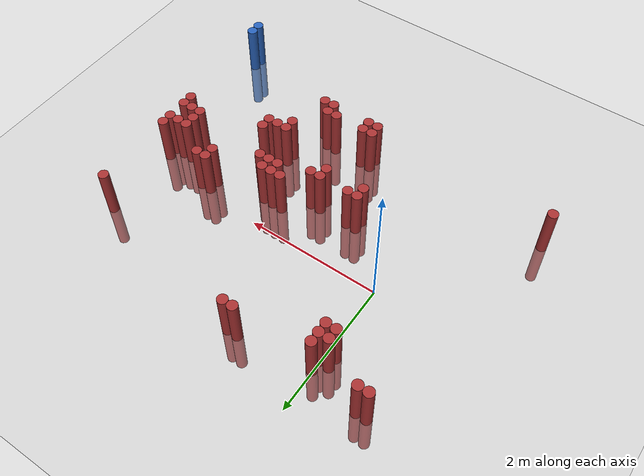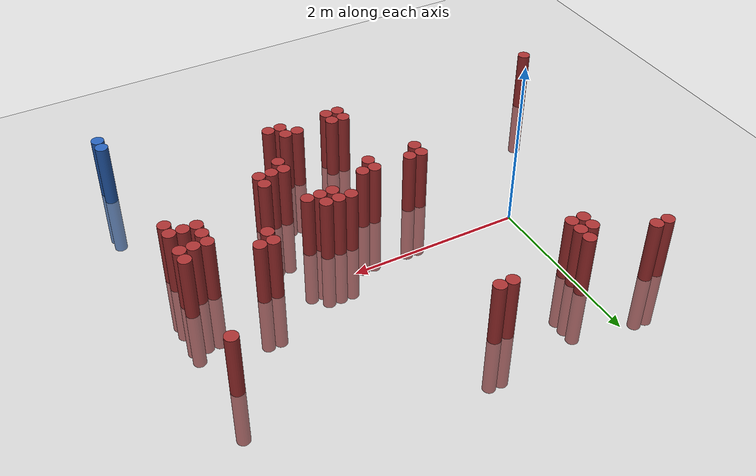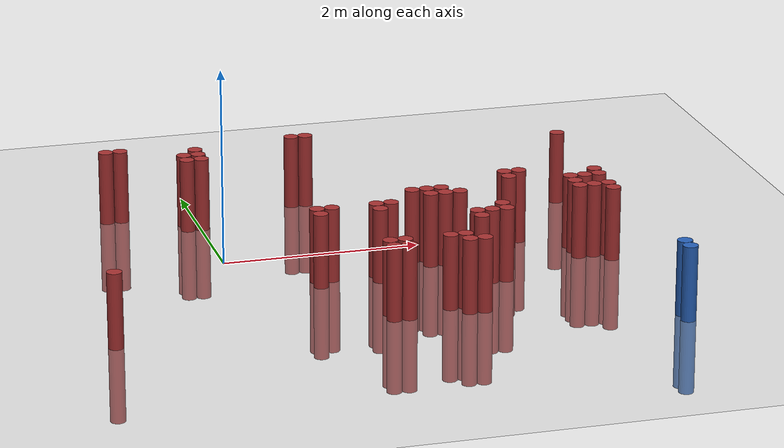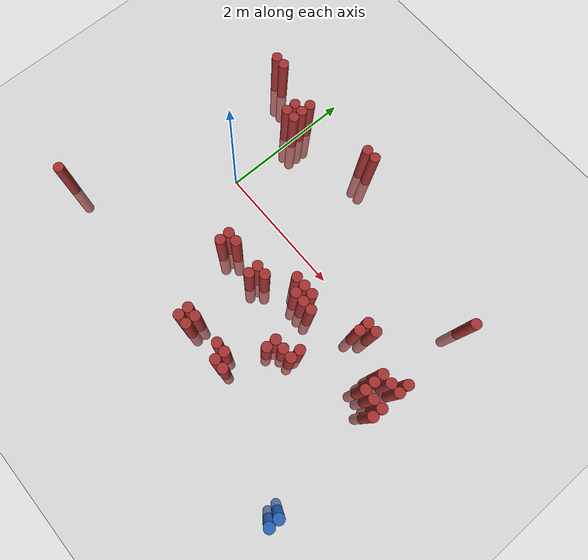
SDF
<sdf version="1.6">
 <world name="default">
  <model name="ground_plane">
   <static>1</static>
   <link name="link">
    <collision name="collision">
     <geometry><plane><normal>0 0 1</normal><size>100 100</size></plane></geometry>
     <surface><friction><ode><mu>100</mu><mu2>50</mu2></ode></friction></surface>
    </collision>
    <visual name="visual">
     <cast_shadows>0</cast_shadows>
     <geometry><plane><normal>0 0 1</normal><size>100 100</size></plane></geometry>
     <material>
      <script><uri>file://media/materials/scripts/gazebo.material</uri><name>Gazebo/Grey</name></script>
     </material>
    </visual>
   </link>
  </model>
  <model name="unit_cylinder_78">
   <static>1</static>
   <pose>3.925000 -2.675000 0.000000 0.000000 0.000000 0.000000</pose>
   <link name="link">
    <inertial>
     <mass>1</mass>
     <inertia><ixx>0.145833</ixx><ixy>0</ixy><ixz>0</ixz><iyy>0.145833</iyy><iyz>0</iyz><izz>0.125</izz></inertia>
    </inertial>
    <collision name="collision">
     <geometry><cylinder><radius>0.075000</radius><length>1.5</length></cylinder></geometry>
    </collision>
    <visual name="visual">
     <geometry><cylinder><radius>0.075000</radius><length>1.5</length></cylinder></geometry>
     <material>
      <ambient>0.152000 0.379000 0.720000 1</ambient>
      <diffuse>0.152000 0.379000 0.720000 1</diffuse>
     </material>
     <material>
      <script><name>Gazebo/Grey</name><uri>file://media/materials/scripts/gazebo.material</uri></script>
     </material>
    </visual>
   </link>
  </model>
  <model name="unit_cylinder_80">
   <static>1</static>
   <pose>3.925000 -2.525000 0.000000 0.000000 0.000000 0.000000</pose>
   <link name="link">
    <inertial>
     <mass>1</mass>
     <inertia><ixx>0.145833</ixx><ixy>0</ixy><ixz>0</ixz><iyy>0.145833</iyy><iyz>0</iyz><izz>0.125</izz></inertia>
    </inertial>
    <collision name="collision">
     <geometry><cylinder><radius>0.075000</radius><length>1.5</length></cylinder></geometry>
    </collision>
    <visual name="visual">
     <geometry><cylinder><radius>0.075000</radius><length>1.5</length></cylinder></geometry>
     <material>
      <ambient>0.152000 0.379000 0.720000 1</ambient>
      <diffuse>0.152000 0.379000 0.720000 1</diffuse>
     </material>
     <material>
      <script><name>Gazebo/Grey</name><uri>file://media/materials/scripts/gazebo.material</uri></script>
     </material>
    </visual>
   </link>
  </model>
  <model name="unit_cylinder_303">
   <static>1</static>
   <pose>-1.475000 -1.925000 0.000000 0.000000 0.000000 0.000000</pose>
   <link name="link">
    <inertial>
     <mass>1</mass>
     <inertia><ixx>0.145833</ixx><ixy>0</ixy><ixz>0</ixz><iyy>0.145833</iyy><iyz>0</iyz><izz>0.125</izz></inertia>
    </inertial>
    <collision name="collision">
     <geometry><cylinder><radius>0.075000</radius><length>1.5</length></cylinder></geometry>
    </collision>
    <visual name="visual">
     <geometry><cylinder><radius>0.075000</radius><length>1.5</length></cylinder></geometry>
     <material>
      <ambient>0.648000 0.192000 0.192000 1</ambient>
      <diffuse>0.648000 0.192000 0.192000 1</diffuse>
     </material>
     <material>
      <script><name>Gazebo/Grey</name><uri>file://media/materials/scripts/gazebo.material</uri></script>
     </material>
    </visual>
   </link>
  </model>
  <model name="unit_cylinder_318">
   <static>1</static>
   <pose>-0.875000 1.525000 0.000000 0.000000 0.000000 0.000000</pose>
   <link name="link">
    <inertial>
     <mass>1</mass>
     <inertia><ixx>0.145833</ixx><ixy>0</ixy><ixz>0</ixz><iyy>0.145833</iyy><iyz>0</iyz><izz>0.125</izz></inertia>
    </inertial>
    <collision name="collision">
     <geometry><cylinder><radius>0.075000</radius><length>1.5</length></cylinder></geometry>
    </collision>
    <visual name="visual">
     <geometry><cylinder><radius>0.075000</radius><length>1.5</length></cylinder></geometry>
     <material>
      <ambient>0.648000 0.192000 0.192000 1</ambient>
      <diffuse>0.648000 0.192000 0.192000 1</diffuse>
     </material>
     <material>
      <script><name>Gazebo/Grey</name><uri>file://media/materials/scripts/gazebo.material</uri></script>
     </material>
    </visual>
   </link>
  </model>
  <model name="unit_cylinder_321">
   <static>1</static>
   <pose>-0.725000 1.525000 0.000000 0.000000 0.000000 0.000000</pose>
   <link name="link">
    <inertial>
     <mass>1</mass>
     <inertia><ixx>0.145833</ixx><ixy>0</ixy><ixz>0</ixz><iyy>0.145833</iyy><iyz>0</iyz><izz>0.125</izz></inertia>
    </inertial>
    <collision name="collision">
     <geometry><cylinder><radius>0.075000</radius><length>1.5</length></cylinder></geometry>
    </collision>
    <visual name="visual">
     <geometry><cylinder><radius>0.075000</radius><length>1.5</length></cylinder></geometry>
     <material>
      <ambient>0.648000 0.192000 0.192000 1</ambient>
      <diffuse>0.648000 0.192000 0.192000 1</diffuse>
     </material>
     <material>
      <script><name>Gazebo/Grey</name><uri>file://media/materials/scripts/gazebo.material</uri></script>
     </material>
    </visual>
   </link>
  </model>
  <model name="unit_cylinder_324">
   <static>1</static>
   <pose>-0.125000 1.075000 0.000000 0.000000 0.000000 0.000000</pose>
   <link name="link">
    <inertial>
     <mass>1</mass>
     <inertia><ixx>0.145833</ixx><ixy>0</ixy><ixz>0</ixz><iyy>0.145833</iyy><iyz>0</iyz><izz>0.125</izz></inertia>
    </inertial>
    <collision name="collision">
     <geometry><cylinder><radius>0.075000</radius><length>1.5</length></cylinder></geometry>
    </collision>
    <visual name="visual">
     <geometry><cylinder><radius>0.075000</radius><length>1.5</length></cylinder></geometry>
     <material>
      <ambient>0.648000 0.192000 0.192000 1</ambient>
      <diffuse>0.648000 0.192000 0.192000 1</diffuse>
     </material>
     <material>
      <script><name>Gazebo/Grey</name><uri>file://media/materials/scripts/gazebo.material</uri></script>
     </material>
    </visual>
   </link>
  </model>
  <model name="unit_cylinder_325">
   <static>1</static>
   <pose>-0.125000 1.225000 0.000000 0.000000 0.000000 0.000000</pose>
   <link name="link">
    <inertial>
     <mass>1</mass>
     <inertia><ixx>0.145833</ixx><ixy>0</ixy><ixz>0</ixz><iyy>0.145833</iyy><iyz>0</iyz><izz>0.125</izz></inertia>
    </inertial>
    <collision name="collision">
     <geometry><cylinder><radius>0.075000</radius><length>1.5</length></cylinder></geometry>
    </collision>
    <visual name="visual">
     <geometry><cylinder><radius>0.075000</radius><length>1.5</length></cylinder></geometry>
     <material>
      <ambient>0.648000 0.192000 0.192000 1</ambient>
      <diffuse>0.648000 0.192000 0.192000 1</diffuse>
     </material>
     <material>
      <script><name>Gazebo/Grey</name><uri>file://media/materials/scripts/gazebo.material</uri></script>
     </material>
    </visual>
   </link>
  </model>
  <model name="unit_cylinder_337">
   <static>1</static>
   <pose>0.025000 1.075000 0.000000 0.000000 0.000000 0.000000</pose>
   <link name="link">
    <inertial>
     <mass>1</mass>
     <inertia><ixx>0.145833</ixx><ixy>0</ixy><ixz>0</ixz><iyy>0.145833</iyy><iyz>0</iyz><izz>0.125</izz></inertia>
    </inertial>
    <collision name="collision">
     <geometry><cylinder><radius>0.075000</radius><length>1.5</length></cylinder></geometry>
    </collision>
    <visual name="visual">
     <geometry><cylinder><radius>0.075000</radius><length>1.5</length></cylinder></geometry>
     <material>
      <ambient>0.648000 0.192000 0.192000 1</ambient>
      <diffuse>0.648000 0.192000 0.192000 1</diffuse>
     </material>
     <material>
      <script><name>Gazebo/Grey</name><uri>file://media/materials/scripts/gazebo.material</uri></script>
     </material>
    </visual>
   </link>
  </model>
  <model name="unit_cylinder_338">
   <static>1</static>
   <pose>0.025000 1.225000 0.000000 0.000000 0.000000 0.000000</pose>
   <link name="link">
    <inertial>
     <mass>1</mass>
     <inertia><ixx>0.145833</ixx><ixy>0</ixy><ixz>0</ixz><iyy>0.145833</iyy><iyz>0</iyz><izz>0.125</izz></inertia>
    </inertial>
    <collision name="collision">
     <geometry><cylinder><radius>0.075000</radius><length>1.5</length></cylinder></geometry>
    </collision>
    <visual name="visual">
     <geometry><cylinder><radius>0.075000</radius><length>1.5</length></cylinder></geometry>
     <material>
      <ambient>0.648000 0.192000 0.192000 1</ambient>
      <diffuse>0.648000 0.192000 0.192000 1</diffuse>
     </material>
     <material>
      <script><name>Gazebo/Grey</name><uri>file://media/materials/scripts/gazebo.material</uri></script>
     </material>
    </visual>
   </link>
  </model>
  <model name="unit_cylinder_339">
   <static>1</static>
   <pose>0.025000 1.375000 0.000000 0.000000 0.000000 0.000000</pose>
   <link name="link">
    <inertial>
     <mass>1</mass>
     <inertia><ixx>0.145833</ixx><ixy>0</ixy><ixz>0</ixz><iyy>0.145833</iyy><iyz>0</iyz><izz>0.125</izz></inertia>
    </inertial>
    <collision name="collision">
     <geometry><cylinder><radius>0.075000</radius><length>1.5</length></cylinder></geometry>
    </collision>
    <visual name="visual">
     <geometry><cylinder><radius>0.075000</radius><length>1.5</length></cylinder></geometry>
     <material>
      <ambient>0.648000 0.192000 0.192000 1</ambient>
      <diffuse>0.648000 0.192000 0.192000 1</diffuse>
     </material>
     <material>
      <script><name>Gazebo/Grey</name><uri>file://media/materials/scripts/gazebo.material</uri></script>
     </material>
    </visual>
   </link>
  </model>
  <model name="unit_cylinder_355">
   <static>1</static>
   <pose>0.775000 -0.875000 0.000000 0.000000 0.000000 0.000000</pose>
   <link name="link">
    <inertial>
     <mass>1</mass>
     <inertia><ixx>0.145833</ixx><ixy>0</ixy><ixz>0</ixz><iyy>0.145833</iyy><iyz>0</iyz><izz>0.125</izz></inertia>
    </inertial>
    <collision name="collision">
     <geometry><cylinder><radius>0.075000</radius><length>1.5</length></cylinder></geometry>
    </collision>
    <visual name="visual">
     <geometry><cylinder><radius>0.075000</radius><length>1.5</length></cylinder></geometry>
     <material>
      <ambient>0.648000 0.192000 0.192000 1</ambient>
      <diffuse>0.648000 0.192000 0.192000 1</diffuse>
     </material>
     <material>
      <script><name>Gazebo/Grey</name><uri>file://media/materials/scripts/gazebo.material</uri></script>
     </material>
    </visual>
   </link>
  </model>
  <model name="unit_cylinder_356">
   <static>1</static>
   <pose>0.775000 -0.725000 0.000000 0.000000 0.000000 0.000000</pose>
   <link name="link">
    <inertial>
     <mass>1</mass>
     <inertia><ixx>0.145833</ixx><ixy>0</ixy><ixz>0</ixz><iyy>0.145833</iyy><iyz>0</iyz><izz>0.125</izz></inertia>
    </inertial>
    <collision name="collision">
     <geometry><cylinder><radius>0.075000</radius><length>1.5</length></cylinder></geometry>
    </collision>
    <visual name="visual">
     <geometry><cylinder><radius>0.075000</radius><length>1.5</length></cylinder></geometry>
     <material>
      <ambient>0.648000 0.192000 0.192000 1</ambient>
      <diffuse>0.648000 0.192000 0.192000 1</diffuse>
     </material>
     <material>
      <script><name>Gazebo/Grey</name><uri>file://media/materials/scripts/gazebo.material</uri></script>
     </material>
    </visual>
   </link>
  </model>
  <model name="unit_cylinder_357">
   <static>1</static>
   <pose>0.925000 -0.725000 0.000000 0.000000 0.000000 0.000000</pose>
   <link name="link">
    <inertial>
     <mass>1</mass>
     <inertia><ixx>0.145833</ixx><ixy>0</ixy><ixz>0</ixz><iyy>0.145833</iyy><iyz>0</iyz><izz>0.125</izz></inertia>
    </inertial>
    <collision name="collision">
     <geometry><cylinder><radius>0.075000</radius><length>1.5</length></cylinder></geometry>
    </collision>
    <visual name="visual">
     <geometry><cylinder><radius>0.075000</radius><length>1.5</length></cylinder></geometry>
     <material>
      <ambient>0.648000 0.192000 0.192000 1</ambient>
      <diffuse>0.648000 0.192000 0.192000 1</diffuse>
     </material>
     <material>
      <script><name>Gazebo/Grey</name><uri>file://media/materials/scripts/gazebo.material</uri></script>
     </material>
    </visual>
   </link>
  </model>
  <model name="unit_cylinder_358">
   <static>1</static>
   <pose>1.075000 1.525000 0.000000 0.000000 0.000000 0.000000</pose>
   <link name="link">
    <inertial>
     <mass>1</mass>
     <inertia><ixx>0.145833</ixx><ixy>0</ixy><ixz>0</ixz><iyy>0.145833</iyy><iyz>0</iyz><izz>0.125</izz></inertia>
    </inertial>
    <collision name="collision">
     <geometry><cylinder><radius>0.075000</radius><length>1.5</length></cylinder></geometry>
    </collision>
    <visual name="visual">
     <geometry><cylinder><radius>0.075000</radius><length>1.5</length></cylinder></geometry>
     <material>
      <ambient>0.648000 0.192000 0.192000 1</ambient>
      <diffuse>0.648000 0.192000 0.192000 1</diffuse>
     </material>
     <material>
      <script><name>Gazebo/Grey</name><uri>file://media/materials/scripts/gazebo.material</uri></script>
     </material>
    </visual>
   </link>
  </model>
  <model name="unit_cylinder_359">
   <static>1</static>
   <pose>1.225000 -1.925000 0.000000 0.000000 0.000000 0.000000</pose>
   <link name="link">
    <inertial>
     <mass>1</mass>
     <inertia><ixx>0.145833</ixx><ixy>0</ixy><ixz>0</ixz><iyy>0.145833</iyy><iyz>0</iyz><izz>0.125</izz></inertia>
    </inertial>
    <collision name="collision">
     <geometry><cylinder><radius>0.075000</radius><length>1.5</length></cylinder></geometry>
    </collision>
    <visual name="visual">
     <geometry><cylinder><radius>0.075000</radius><length>1.5</length></cylinder></geometry>
     <material>
      <ambient>0.648000 0.192000 0.192000 1</ambient>
      <diffuse>0.648000 0.192000 0.192000 1</diffuse>
     </material>
     <material>
      <script><name>Gazebo/Grey</name><uri>file://media/materials/scripts/gazebo.material</uri></script>
     </material>
    </visual>
   </link>
  </model>
  <model name="unit_cylinder_360">
   <static>1</static>
   <pose>1.225000 -1.775000 0.000000 0.000000 0.000000 0.000000</pose>
   <link name="link">
    <inertial>
     <mass>1</mass>
     <inertia><ixx>0.145833</ixx><ixy>0</ixy><ixz>0</ixz><iyy>0.145833</iyy><iyz>0</iyz><izz>0.125</izz></inertia>
    </inertial>
    <collision name="collision">
     <geometry><cylinder><radius>0.075000</radius><length>1.5</length></cylinder></geometry>
    </collision>
    <visual name="visual">
     <geometry><cylinder><radius>0.075000</radius><length>1.5</length></cylinder></geometry>
     <material>
      <ambient>0.648000 0.192000 0.192000 1</ambient>
      <diffuse>0.648000 0.192000 0.192000 1</diffuse>
     </material>
     <material>
      <script><name>Gazebo/Grey</name><uri>file://media/materials/scripts/gazebo.material</uri></script>
     </material>
    </visual>
   </link>
  </model>
  <model name="unit_cylinder_361">
   <static>1</static>
   <pose>1.225000 1.525000 0.000000 0.000000 0.000000 0.000000</pose>
   <link name="link">
    <inertial>
     <mass>1</mass>
     <inertia><ixx>0.145833</ixx><ixy>0</ixy><ixz>0</ixz><iyy>0.145833</iyy><iyz>0</iyz><izz>0.125</izz></inertia>
    </inertial>
    <collision name="collision">
     <geometry><cylinder><radius>0.075000</radius><length>1.5</length></cylinder></geometry>
    </collision>
    <visual name="visual">
     <geometry><cylinder><radius>0.075000</radius><length>1.5</length></cylinder></geometry>
     <material>
      <ambient>0.648000 0.192000 0.192000 1</ambient>
      <diffuse>0.648000 0.192000 0.192000 1</diffuse>
     </material>
     <material>
      <script><name>Gazebo/Grey</name><uri>file://media/materials/scripts/gazebo.material</uri></script>
     </material>
    </visual>
   </link>
  </model>
  <model name="unit_cylinder_366">
   <static>1</static>
   <pose>1.375000 -1.925000 0.000000 0.000000 0.000000 0.000000</pose>
   <link name="link">
    <inertial>
     <mass>1</mass>
     <inertia><ixx>0.145833</ixx><ixy>0</ixy><ixz>0</ixz><iyy>0.145833</iyy><iyz>0</iyz><izz>0.125</izz></inertia>
    </inertial>
    <collision name="collision">
     <geometry><cylinder><radius>0.075000</radius><length>1.5</length></cylinder></geometry>
    </collision>
    <visual name="visual">
     <geometry><cylinder><radius>0.075000</radius><length>1.5</length></cylinder></geometry>
     <material>
      <ambient>0.648000 0.192000 0.192000 1</ambient>
      <diffuse>0.648000 0.192000 0.192000 1</diffuse>
     </material>
     <material>
      <script><name>Gazebo/Grey</name><uri>file://media/materials/scripts/gazebo.material</uri></script>
     </material>
    </visual>
   </link>
  </model>
  <model name="unit_cylinder_367">
   <static>1</static>
   <pose>1.375000 -1.775000 0.000000 0.000000 0.000000 0.000000</pose>
   <link name="link">
    <inertial>
     <mass>1</mass>
     <inertia><ixx>0.145833</ixx><ixy>0</ixy><ixz>0</ixz><iyy>0.145833</iyy><iyz>0</iyz><izz>0.125</izz></inertia>
    </inertial>
    <collision name="collision">
     <geometry><cylinder><radius>0.075000</radius><length>1.5</length></cylinder></geometry>
    </collision>
    <visual name="visual">
     <geometry><cylinder><radius>0.075000</radius><length>1.5</length></cylinder></geometry>
     <material>
      <ambient>0.648000 0.192000 0.192000 1</ambient>
      <diffuse>0.648000 0.192000 0.192000 1</diffuse>
     </material>
     <material>
      <script><name>Gazebo/Grey</name><uri>file://media/materials/scripts/gazebo.material</uri></script>
     </material>
    </visual>
   </link>
  </model>
  <model name="unit_cylinder_368">
   <static>1</static>
   <pose>1.375000 -0.875000 0.000000 0.000000 0.000000 0.000000</pose>
   <link name="link">
    <inertial>
     <mass>1</mass>
     <inertia><ixx>0.145833</ixx><ixy>0</ixy><ixz>0</ixz><iyy>0.145833</iyy><iyz>0</iyz><izz>0.125</izz></inertia>
    </inertial>
    <collision name="collision">
     <geometry><cylinder><radius>0.075000</radius><length>1.5</length></cylinder></geometry>
    </collision>
    <visual name="visual">
     <geometry><cylinder><radius>0.075000</radius><length>1.5</length></cylinder></geometry>
     <material>
      <ambient>0.648000 0.192000 0.192000 1</ambient>
      <diffuse>0.648000 0.192000 0.192000 1</diffuse>
     </material>
     <material>
      <script><name>Gazebo/Grey</name><uri>file://media/materials/scripts/gazebo.material</uri></script>
     </material>
    </visual>
   </link>
  </model>
  <model name="unit_cylinder_369">
   <static>1</static>
   <pose>1.375000 -0.725000 0.000000 0.000000 0.000000 0.000000</pose>
   <link name="link">
    <inertial>
     <mass>1</mass>
     <inertia><ixx>0.145833</ixx><ixy>0</ixy><ixz>0</ixz><iyy>0.145833</iyy><iyz>0</iyz><izz>0.125</izz></inertia>
    </inertial>
    <collision name="collision">
     <geometry><cylinder><radius>0.075000</radius><length>1.5</length></cylinder></geometry>
    </collision>
    <visual name="visual">
     <geometry><cylinder><radius>0.075000</radius><length>1.5</length></cylinder></geometry>
     <material>
      <ambient>0.648000 0.192000 0.192000 1</ambient>
      <diffuse>0.648000 0.192000 0.192000 1</diffuse>
     </material>
     <material>
      <script><name>Gazebo/Grey</name><uri>file://media/materials/scripts/gazebo.material</uri></script>
     </material>
    </visual>
   </link>
  </model>
  <model name="unit_cylinder_375">
   <static>1</static>
   <pose>1.525000 -0.725000 0.000000 0.000000 0.000000 0.000000</pose>
   <link name="link">
    <inertial>
     <mass>1</mass>
     <inertia><ixx>0.145833</ixx><ixy>0</ixy><ixz>0</ixz><iyy>0.145833</iyy><iyz>0</iyz><izz>0.125</izz></inertia>
    </inertial>
    <collision name="collision">
     <geometry><cylinder><radius>0.075000</radius><length>1.5</length></cylinder></geometry>
    </collision>
    <visual name="visual">
     <geometry><cylinder><radius>0.075000</radius><length>1.5</length></cylinder></geometry>
     <material>
      <ambient>0.648000 0.192000 0.192000 1</ambient>
      <diffuse>0.648000 0.192000 0.192000 1</diffuse>
     </material>
     <material>
      <script><name>Gazebo/Grey</name><uri>file://media/materials/scripts/gazebo.material</uri></script>
     </material>
    </visual>
   </link>
  </model>
  <model name="unit_cylinder_381">
   <static>1</static>
   <pose>1.825000 -1.775000 0.000000 0.000000 0.000000 0.000000</pose>
   <link name="link">
    <inertial>
     <mass>1</mass>
     <inertia><ixx>0.145833</ixx><ixy>0</ixy><ixz>0</ixz><iyy>0.145833</iyy><iyz>0</iyz><izz>0.125</izz></inertia>
    </inertial>
    <collision name="collision">
     <geometry><cylinder><radius>0.075000</radius><length>1.5</length></cylinder></geometry>
    </collision>
    <visual name="visual">
     <geometry><cylinder><radius>0.075000</radius><length>1.5</length></cylinder></geometry>
     <material>
      <ambient>0.648000 0.192000 0.192000 1</ambient>
      <diffuse>0.648000 0.192000 0.192000 1</diffuse>
     </material>
     <material>
      <script><name>Gazebo/Grey</name><uri>file://media/materials/scripts/gazebo.material</uri></script>
     </material>
    </visual>
   </link>
  </model>
  <model name="unit_cylinder_382">
   <static>1</static>
   <pose>1.825000 -0.425000 0.000000 0.000000 0.000000 0.000000</pose>
   <link name="link">
    <inertial>
     <mass>1</mass>
     <inertia><ixx>0.145833</ixx><ixy>0</ixy><ixz>0</ixz><iyy>0.145833</iyy><iyz>0</iyz><izz>0.125</izz></inertia>
    </inertial>
    <collision name="collision">
     <geometry><cylinder><radius>0.075000</radius><length>1.5</length></cylinder></geometry>
    </collision>
    <visual name="visual">
     <geometry><cylinder><radius>0.075000</radius><length>1.5</length></cylinder></geometry>
     <material>
      <ambient>0.648000 0.192000 0.192000 1</ambient>
      <diffuse>0.648000 0.192000 0.192000 1</diffuse>
     </material>
     <material>
      <script><name>Gazebo/Grey</name><uri>file://media/materials/scripts/gazebo.material</uri></script>
     </material>
    </visual>
   </link>
  </model>
  <model name="unit_cylinder_387">
   <static>1</static>
   <pose>1.975000 -1.925000 0.000000 0.000000 0.000000 0.000000</pose>
   <link name="link">
    <inertial>
     <mass>1</mass>
     <inertia><ixx>0.145833</ixx><ixy>0</ixy><ixz>0</ixz><iyy>0.145833</iyy><iyz>0</iyz><izz>0.125</izz></inertia>
    </inertial>
    <collision name="collision">
     <geometry><cylinder><radius>0.075000</radius><length>1.5</length></cylinder></geometry>
    </collision>
    <visual name="visual">
     <geometry><cylinder><radius>0.075000</radius><length>1.5</length></cylinder></geometry>
     <material>
      <ambient>0.648000 0.192000 0.192000 1</ambient>
      <diffuse>0.648000 0.192000 0.192000 1</diffuse>
     </material>
     <material>
      <script><name>Gazebo/Grey</name><uri>file://media/materials/scripts/gazebo.material</uri></script>
     </material>
    </visual>
   </link>
  </model>
  <model name="unit_cylinder_388">
   <static>1</static>
   <pose>1.975000 -1.775000 0.000000 0.000000 0.000000 0.000000</pose>
   <link name="link">
    <inertial>
     <mass>1</mass>
     <inertia><ixx>0.145833</ixx><ixy>0</ixy><ixz>0</ixz><iyy>0.145833</iyy><iyz>0</iyz><izz>0.125</izz></inertia>
    </inertial>
    <collision name="collision">
     <geometry><cylinder><radius>0.075000</radius><length>1.5</length></cylinder></geometry>
    </collision>
    <visual name="visual">
     <geometry><cylinder><radius>0.075000</radius><length>1.5</length></cylinder></geometry>
     <material>
      <ambient>0.648000 0.192000 0.192000 1</ambient>
      <diffuse>0.648000 0.192000 0.192000 1</diffuse>
     </material>
     <material>
      <script><name>Gazebo/Grey</name><uri>file://media/materials/scripts/gazebo.material</uri></script>
     </material>
    </visual>
   </link>
  </model>
  <model name="unit_cylinder_389">
   <static>1</static>
   <pose>1.975000 -0.575000 0.000000 0.000000 0.000000 0.000000</pose>
   <link name="link">
    <inertial>
     <mass>1</mass>
     <inertia><ixx>0.145833</ixx><ixy>0</ixy><ixz>0</ixz><iyy>0.145833</iyy><iyz>0</iyz><izz>0.125</izz></inertia>
    </inertial>
    <collision name="collision">
     <geometry><cylinder><radius>0.075000</radius><length>1.5</length></cylinder></geometry>
    </collision>
    <visual name="visual">
     <geometry><cylinder><radius>0.075000</radius><length>1.5</length></cylinder></geometry>
     <material>
      <ambient>0.648000 0.192000 0.192000 1</ambient>
      <diffuse>0.648000 0.192000 0.192000 1</diffuse>
     </material>
     <material>
      <script><name>Gazebo/Grey</name><uri>file://media/materials/scripts/gazebo.material</uri></script>
     </material>
    </visual>
   </link>
  </model>
  <model name="unit_cylinder_390">
   <static>1</static>
   <pose>1.975000 -0.425000 0.000000 0.000000 0.000000 0.000000</pose>
   <link name="link">
    <inertial>
     <mass>1</mass>
     <inertia><ixx>0.145833</ixx><ixy>0</ixy><ixz>0</ixz><iyy>0.145833</iyy><iyz>0</iyz><izz>0.125</izz></inertia>
    </inertial>
    <collision name="collision">
     <geometry><cylinder><radius>0.075000</radius><length>1.5</length></cylinder></geometry>
    </collision>
    <visual name="visual">
     <geometry><cylinder><radius>0.075000</radius><length>1.5</length></cylinder></geometry>
     <material>
      <ambient>0.648000 0.192000 0.192000 1</ambient>
      <diffuse>0.648000 0.192000 0.192000 1</diffuse>
     </material>
     <material>
      <script><name>Gazebo/Grey</name><uri>file://media/materials/scripts/gazebo.material</uri></script>
     </material>
    </visual>
   </link>
  </model>
  <model name="unit_cylinder_392">
   <static>1</static>
   <pose>2.125000 -1.925000 0.000000 0.000000 0.000000 0.000000</pose>
   <link name="link">
    <inertial>
     <mass>1</mass>
     <inertia><ixx>0.145833</ixx><ixy>0</ixy><ixz>0</ixz><iyy>0.145833</iyy><iyz>0</iyz><izz>0.125</izz></inertia>
    </inertial>
    <collision name="collision">
     <geometry><cylinder><radius>0.075000</radius><length>1.5</length></cylinder></geometry>
    </collision>
    <visual name="visual">
     <geometry><cylinder><radius>0.075000</radius><length>1.5</length></cylinder></geometry>
     <material>
      <ambient>0.648000 0.192000 0.192000 1</ambient>
      <diffuse>0.648000 0.192000 0.192000 1</diffuse>
     </material>
     <material>
      <script><name>Gazebo/Grey</name><uri>file://media/materials/scripts/gazebo.material</uri></script>
     </material>
    </visual>
   </link>
  </model>
  <model name="unit_cylinder_393">
   <static>1</static>
   <pose>2.125000 -0.575000 0.000000 0.000000 0.000000 0.000000</pose>
   <link name="link">
    <inertial>
     <mass>1</mass>
     <inertia><ixx>0.145833</ixx><ixy>0</ixy><ixz>0</ixz><iyy>0.145833</iyy><iyz>0</iyz><izz>0.125</izz></inertia>
    </inertial>
    <collision name="collision">
     <geometry><cylinder><radius>0.075000</radius><length>1.5</length></cylinder></geometry>
    </collision>
    <visual name="visual">
     <geometry><cylinder><radius>0.075000</radius><length>1.5</length></cylinder></geometry>
     <material>
      <ambient>0.648000 0.192000 0.192000 1</ambient>
      <diffuse>0.648000 0.192000 0.192000 1</diffuse>
     </material>
     <material>
      <script><name>Gazebo/Grey</name><uri>file://media/materials/scripts/gazebo.material</uri></script>
     </material>
    </visual>
   </link>
  </model>
  <model name="unit_cylinder_394">
   <static>1</static>
   <pose>2.125000 -0.425000 0.000000 0.000000 0.000000 0.000000</pose>
   <link name="link">
    <inertial>
     <mass>1</mass>
     <inertia><ixx>0.145833</ixx><ixy>0</ixy><ixz>0</ixz><iyy>0.145833</iyy><iyz>0</iyz><izz>0.125</izz></inertia>
    </inertial>
    <collision name="collision">
     <geometry><cylinder><radius>0.075000</radius><length>1.5</length></cylinder></geometry>
    </collision>
    <visual name="visual">
     <geometry><cylinder><radius>0.075000</radius><length>1.5</length></cylinder></geometry>
     <material>
      <ambient>0.648000 0.192000 0.192000 1</ambient>
      <diffuse>0.648000 0.192000 0.192000 1</diffuse>
     </material>
     <material>
      <script><name>Gazebo/Grey</name><uri>file://media/materials/scripts/gazebo.material</uri></script>
     </material>
    </visual>
   </link>
  </model>
  <model name="unit_cylinder_396">
   <static>1</static>
   <pose>2.275000 -1.325000 0.000000 0.000000 0.000000 0.000000</pose>
   <link name="link">
    <inertial>
     <mass>1</mass>
     <inertia><ixx>0.145833</ixx><ixy>0</ixy><ixz>0</ixz><iyy>0.145833</iyy><iyz>0</iyz><izz>0.125</izz></inertia>
    </inertial>
    <collision name="collision">
     <geometry><cylinder><radius>0.075000</radius><length>1.5</length></cylinder></geometry>
    </collision>
    <visual name="visual">
     <geometry><cylinder><radius>0.075000</radius><length>1.5</length></cylinder></geometry>
     <material>
      <ambient>0.648000 0.192000 0.192000 1</ambient>
      <diffuse>0.648000 0.192000 0.192000 1</diffuse>
     </material>
     <material>
      <script><name>Gazebo/Grey</name><uri>file://media/materials/scripts/gazebo.material</uri></script>
     </material>
    </visual>
   </link>
  </model>
  <model name="unit_cylinder_397">
   <static>1</static>
   <pose>2.275000 -1.175000 0.000000 0.000000 0.000000 0.000000</pose>
   <link name="link">
    <inertial>
     <mass>1</mass>
     <inertia><ixx>0.145833</ixx><ixy>0</ixy><ixz>0</ixz><iyy>0.145833</iyy><iyz>0</iyz><izz>0.125</izz></inertia>
    </inertial>
    <collision name="collision">
     <geometry><cylinder><radius>0.075000</radius><length>1.5</length></cylinder></geometry>
    </collision>
    <visual name="visual">
     <geometry><cylinder><radius>0.075000</radius><length>1.5</length></cylinder></geometry>
     <material>
      <ambient>0.648000 0.192000 0.192000 1</ambient>
      <diffuse>0.648000 0.192000 0.192000 1</diffuse>
     </material>
     <material>
      <script><name>Gazebo/Grey</name><uri>file://media/materials/scripts/gazebo.material</uri></script>
     </material>
    </visual>
   </link>
  </model>
  <model name="unit_cylinder_398">
   <static>1</static>
   <pose>2.275000 -0.575000 0.000000 0.000000 0.000000 0.000000</pose>
   <link name="link">
    <inertial>
     <mass>1</mass>
     <inertia><ixx>0.145833</ixx><ixy>0</ixy><ixz>0</ixz><iyy>0.145833</iyy><iyz>0</iyz><izz>0.125</izz></inertia>
    </inertial>
    <collision name="collision">
     <geometry><cylinder><radius>0.075000</radius><length>1.5</length></cylinder></geometry>
    </collision>
    <visual name="visual">
     <geometry><cylinder><radius>0.075000</radius><length>1.5</length></cylinder></geometry>
     <material>
      <ambient>0.648000 0.192000 0.192000 1</ambient>
      <diffuse>0.648000 0.192000 0.192000 1</diffuse>
     </material>
     <material>
      <script><name>Gazebo/Grey</name><uri>file://media/materials/scripts/gazebo.material</uri></script>
     </material>
    </visual>
   </link>
  </model>
  <model name="unit_cylinder_401">
   <static>1</static>
   <pose>2.425000 -1.175000 0.000000 0.000000 0.000000 0.000000</pose>
   <link name="link">
    <inertial>
     <mass>1</mass>
     <inertia><ixx>0.145833</ixx><ixy>0</ixy><ixz>0</ixz><iyy>0.145833</iyy><iyz>0</iyz><izz>0.125</izz></inertia>
    </inertial>
    <collision name="collision">
     <geometry><cylinder><radius>0.075000</radius><length>1.5</length></cylinder></geometry>
    </collision>
    <visual name="visual">
     <geometry><cylinder><radius>0.075000</radius><length>1.5</length></cylinder></geometry>
     <material>
      <ambient>0.648000 0.192000 0.192000 1</ambient>
      <diffuse>0.648000 0.192000 0.192000 1</diffuse>
     </material>
     <material>
      <script><name>Gazebo/Grey</name><uri>file://media/materials/scripts/gazebo.material</uri></script>
     </material>
    </visual>
   </link>
  </model>
  <model name="unit_cylinder_403">
   <static>1</static>
   <pose>2.575000 -1.175000 0.000000 0.000000 0.000000 0.000000</pose>
   <link name="link">
    <inertial>
     <mass>1</mass>
     <inertia><ixx>0.145833</ixx><ixy>0</ixy><ixz>0</ixz><iyy>0.145833</iyy><iyz>0</iyz><izz>0.125</izz></inertia>
    </inertial>
    <collision name="collision">
     <geometry><cylinder><radius>0.075000</radius><length>1.5</length></cylinder></geometry>
    </collision>
    <visual name="visual">
     <geometry><cylinder><radius>0.075000</radius><length>1.5</length></cylinder></geometry>
     <material>
      <ambient>0.648000 0.192000 0.192000 1</ambient>
      <diffuse>0.648000 0.192000 0.192000 1</diffuse>
     </material>
     <material>
      <script><name>Gazebo/Grey</name><uri>file://media/materials/scripts/gazebo.material</uri></script>
     </material>
    </visual>
   </link>
  </model>
  <model name="unit_cylinder_404">
   <static>1</static>
   <pose>2.575000 -1.025000 0.000000 0.000000 0.000000 0.000000</pose>
   <link name="link">
    <inertial>
     <mass>1</mass>
     <inertia><ixx>0.145833</ixx><ixy>0</ixy><ixz>0</ixz><iyy>0.145833</iyy><iyz>0</iyz><izz>0.125</izz></inertia>
    </inertial>
    <collision name="collision">
     <geometry><cylinder><radius>0.075000</radius><length>1.5</length></cylinder></geometry>
    </collision>
    <visual name="visual">
     <geometry><cylinder><radius>0.075000</radius><length>1.5</length></cylinder></geometry>
     <material>
      <ambient>0.648000 0.192000 0.192000 1</ambient>
      <diffuse>0.648000 0.192000 0.192000 1</diffuse>
     </material>
     <material>
      <script><name>Gazebo/Grey</name><uri>file://media/materials/scripts/gazebo.material</uri></script>
     </material>
    </visual>
   </link>
  </model>
  <model name="unit_cylinder_410">
   <static>1</static>
   <pose>2.875000 -0.275000 0.000000 0.000000 0.000000 0.000000</pose>
   <link name="link">
    <inertial>
     <mass>1</mass>
     <inertia><ixx>0.145833</ixx><ixy>0</ixy><ixz>0</ixz><iyy>0.145833</iyy><iyz>0</iyz><izz>0.125</izz></inertia>
    </inertial>
    <collision name="collision">
     <geometry><cylinder><radius>0.075000</radius><length>1.5</length></cylinder></geometry>
    </collision>
    <visual name="visual">
     <geometry><cylinder><radius>0.075000</radius><length>1.5</length></cylinder></geometry>
     <material>
      <ambient>0.648000 0.192000 0.192000 1</ambient>
      <diffuse>0.648000 0.192000 0.192000 1</diffuse>
     </material>
     <material>
      <script><name>Gazebo/Grey</name><uri>file://media/materials/scripts/gazebo.material</uri></script>
     </material>
    </visual>
   </link>
  </model>
  <model name="unit_cylinder_411">
   <static>1</static>
   <pose>2.875000 -0.125000 0.000000 0.000000 0.000000 0.000000</pose>
   <link name="link">
    <inertial>
     <mass>1</mass>
     <inertia><ixx>0.145833</ixx><ixy>0</ixy><ixz>0</ixz><iyy>0.145833</iyy><iyz>0</iyz><izz>0.125</izz></inertia>
    </inertial>
    <collision name="collision">
     <geometry><cylinder><radius>0.075000</radius><length>1.5</length></cylinder></geometry>
    </collision>
    <visual name="visual">
     <geometry><cylinder><radius>0.075000</radius><length>1.5</length></cylinder></geometry>
     <material>
      <ambient>0.648000 0.192000 0.192000 1</ambient>
      <diffuse>0.648000 0.192000 0.192000 1</diffuse>
     </material>
     <material>
      <script><name>Gazebo/Grey</name><uri>file://media/materials/scripts/gazebo.material</uri></script>
     </material>
    </visual>
   </link>
  </model>
  <model name="unit_cylinder_415">
   <static>1</static>
   <pose>3.025000 -0.125000 0.000000 0.000000 0.000000 0.000000</pose>
   <link name="link">
    <inertial>
     <mass>1</mass>
     <inertia><ixx>0.145833</ixx><ixy>0</ixy><ixz>0</ixz><iyy>0.145833</iyy><iyz>0</iyz><izz>0.125</izz></inertia>
    </inertial>
    <collision name="collision">
     <geometry><cylinder><radius>0.075000</radius><length>1.5</length></cylinder></geometry>
    </collision>
    <visual name="visual">
     <geometry><cylinder><radius>0.075000</radius><length>1.5</length></cylinder></geometry>
     <material>
      <ambient>0.648000 0.192000 0.192000 1</ambient>
      <diffuse>0.648000 0.192000 0.192000 1</diffuse>
     </material>
     <material>
      <script><name>Gazebo/Grey</name><uri>file://media/materials/scripts/gazebo.material</uri></script>
     </material>
    </visual>
   </link>
  </model>
  <model name="unit_cylinder_421">
   <static>1</static>
   <pose>3.475000 -0.725000 0.000000 0.000000 0.000000 0.000000</pose>
   <link name="link">
    <inertial>
     <mass>1</mass>
     <inertia><ixx>0.145833</ixx><ixy>0</ixy><ixz>0</ixz><iyy>0.145833</iyy><iyz>0</iyz><izz>0.125</izz></inertia>
    </inertial>
    <collision name="collision">
     <geometry><cylinder><radius>0.075000</radius><length>1.5</length></cylinder></geometry>
    </collision>
    <visual name="visual">
     <geometry><cylinder><radius>0.075000</radius><length>1.5</length></cylinder></geometry>
     <material>
      <ambient>0.648000 0.192000 0.192000 1</ambient>
      <diffuse>0.648000 0.192000 0.192000 1</diffuse>
     </material>
     <material>
      <script><name>Gazebo/Grey</name><uri>file://media/materials/scripts/gazebo.material</uri></script>
     </material>
    </visual>
   </link>
  </model>
  <model name="unit_cylinder_422">
   <static>1</static>
   <pose>3.475000 -0.575000 0.000000 0.000000 0.000000 0.000000</pose>
   <link name="link">
    <inertial>
     <mass>1</mass>
     <inertia><ixx>0.145833</ixx><ixy>0</ixy><ixz>0</ixz><iyy>0.145833</iyy><iyz>0</iyz><izz>0.125</izz></inertia>
    </inertial>
    <collision name="collision">
     <geometry><cylinder><radius>0.075000</radius><length>1.5</length></cylinder></geometry>
    </collision>
    <visual name="visual">
     <geometry><cylinder><radius>0.075000</radius><length>1.5</length></cylinder></geometry>
     <material>
      <ambient>0.648000 0.192000 0.192000 1</ambient>
      <diffuse>0.648000 0.192000 0.192000 1</diffuse>
     </material>
     <material>
      <script><name>Gazebo/Grey</name><uri>file://media/materials/scripts/gazebo.material</uri></script>
     </material>
    </visual>
   </link>
  </model>
  <model name="unit_cylinder_423">
   <static>1</static>
   <pose>3.475000 -0.425000 0.000000 0.000000 0.000000 0.000000</pose>
   <link name="link">
    <inertial>
     <mass>1</mass>
     <inertia><ixx>0.145833</ixx><ixy>0</ixy><ixz>0</ixz><iyy>0.145833</iyy><iyz>0</iyz><izz>0.125</izz></inertia>
    </inertial>
    <collision name="collision">
     <geometry><cylinder><radius>0.075000</radius><length>1.5</length></cylinder></geometry>
    </collision>
    <visual name="visual">
     <geometry><cylinder><radius>0.075000</radius><length>1.5</length></cylinder></geometry>
     <material>
      <ambient>0.648000 0.192000 0.192000 1</ambient>
      <diffuse>0.648000 0.192000 0.192000 1</diffuse>
     </material>
     <material>
      <script><name>Gazebo/Grey</name><uri>file://media/materials/scripts/gazebo.material</uri></script>
     </material>
    </visual>
   </link>
  </model>
  <model name="unit_cylinder_429">
   <static>1</static>
   <pose>3.625000 -0.725000 0.000000 0.000000 0.000000 0.000000</pose>
   <link name="link">
    <inertial>
     <mass>1</mass>
     <inertia><ixx>0.145833</ixx><ixy>0</ixy><ixz>0</ixz><iyy>0.145833</iyy><iyz>0</iyz><izz>0.125</izz></inertia>
    </inertial>
    <collision name="collision">
     <geometry><cylinder><radius>0.075000</radius><length>1.5</length></cylinder></geometry>
    </collision>
    <visual name="visual">
     <geometry><cylinder><radius>0.075000</radius><length>1.5</length></cylinder></geometry>
     <material>
      <ambient>0.648000 0.192000 0.192000 1</ambient>
      <diffuse>0.648000 0.192000 0.192000 1</diffuse>
     </material>
     <material>
      <script><name>Gazebo/Grey</name><uri>file://media/materials/scripts/gazebo.material</uri></script>
     </material>
    </visual>
   </link>
  </model>
  <model name="unit_cylinder_430">
   <static>1</static>
   <pose>3.625000 -0.425000 0.000000 0.000000 0.000000 0.000000</pose>
   <link name="link">
    <inertial>
     <mass>1</mass>
     <inertia><ixx>0.145833</ixx><ixy>0</ixy><ixz>0</ixz><iyy>0.145833</iyy><iyz>0</iyz><izz>0.125</izz></inertia>
    </inertial>
    <collision name="collision">
     <geometry><cylinder><radius>0.075000</radius><length>1.5</length></cylinder></geometry>
    </collision>
    <visual name="visual">
     <geometry><cylinder><radius>0.075000</radius><length>1.5</length></cylinder></geometry>
     <material>
      <ambient>0.648000 0.192000 0.192000 1</ambient>
      <diffuse>0.648000 0.192000 0.192000 1</diffuse>
     </material>
     <material>
      <script><name>Gazebo/Grey</name><uri>file://media/materials/scripts/gazebo.material</uri></script>
     </material>
    </visual>
   </link>
  </model>
  <model name="unit_cylinder_439">
   <static>1</static>
   <pose>3.775000 -0.875000 0.000000 0.000000 0.000000 0.000000</pose>
   <link name="link">
    <inertial>
     <mass>1</mass>
     <inertia><ixx>0.145833</ixx><ixy>0</ixy><ixz>0</ixz><iyy>0.145833</iyy><iyz>0</iyz><izz>0.125</izz></inertia>
    </inertial>
    <collision name="collision">
     <geometry><cylinder><radius>0.075000</radius><length>1.5</length></cylinder></geometry>
    </collision>
    <visual name="visual">
     <geometry><cylinder><radius>0.075000</radius><length>1.5</length></cylinder></geometry>
     <material>
      <ambient>0.648000 0.192000 0.192000 1</ambient>
      <diffuse>0.648000 0.192000 0.192000 1</diffuse>
     </material>
     <material>
      <script><name>Gazebo/Grey</name><uri>file://media/materials/scripts/gazebo.material</uri></script>
     </material>
    </visual>
   </link>
  </model>
  <model name="unit_cylinder_440">
   <static>1</static>
   <pose>3.775000 -0.725000 0.000000 0.000000 0.000000 0.000000</pose>
   <link name="link">
    <inertial>
     <mass>1</mass>
     <inertia><ixx>0.145833</ixx><ixy>0</ixy><ixz>0</ixz><iyy>0.145833</iyy><iyz>0</iyz><izz>0.125</izz></inertia>
    </inertial>
    <collision name="collision">
     <geometry><cylinder><radius>0.075000</radius><length>1.5</length></cylinder></geometry>
    </collision>
    <visual name="visual">
     <geometry><cylinder><radius>0.075000</radius><length>1.5</length></cylinder></geometry>
     <material>
      <ambient>0.648000 0.192000 0.192000 1</ambient>
      <diffuse>0.648000 0.192000 0.192000 1</diffuse>
     </material>
     <material>
      <script><name>Gazebo/Grey</name><uri>file://media/materials/scripts/gazebo.material</uri></script>
     </material>
    </visual>
   </link>
  </model>
  <model name="unit_cylinder_441">
   <static>1</static>
   <pose>3.775000 -0.425000 0.000000 0.000000 0.000000 0.000000</pose>
   <link name="link">
    <inertial>
     <mass>1</mass>
     <inertia><ixx>0.145833</ixx><ixy>0</ixy><ixz>0</ixz><iyy>0.145833</iyy><iyz>0</iyz><izz>0.125</izz></inertia>
    </inertial>
    <collision name="collision">
     <geometry><cylinder><radius>0.075000</radius><length>1.5</length></cylinder></geometry>
    </collision>
    <visual name="visual">
     <geometry><cylinder><radius>0.075000</radius><length>1.5</length></cylinder></geometry>
     <material>
      <ambient>0.648000 0.192000 0.192000 1</ambient>
      <diffuse>0.648000 0.192000 0.192000 1</diffuse>
     </material>
     <material>
      <script><name>Gazebo/Grey</name><uri>file://media/materials/scripts/gazebo.material</uri></script>
     </material>
    </visual>
   </link>
  </model>
  <model name="unit_cylinder_442">
   <static>1</static>
   <pose>3.775000 -0.275000 0.000000 0.000000 0.000000 0.000000</pose>
   <link name="link">
    <inertial>
     <mass>1</mass>
     <inertia><ixx>0.145833</ixx><ixy>0</ixy><ixz>0</ixz><iyy>0.145833</iyy><iyz>0</iyz><izz>0.125</izz></inertia>
    </inertial>
    <collision name="collision">
     <geometry><cylinder><radius>0.075000</radius><length>1.5</length></cylinder></geometry>
    </collision>
    <visual name="visual">
     <geometry><cylinder><radius>0.075000</radius><length>1.5</length></cylinder></geometry>
     <material>
      <ambient>0.648000 0.192000 0.192000 1</ambient>
      <diffuse>0.648000 0.192000 0.192000 1</diffuse>
     </material>
     <material>
      <script><name>Gazebo/Grey</name><uri>file://media/materials/scripts/gazebo.material</uri></script>
     </material>
    </visual>
   </link>
  </model>
  <model name="unit_cylinder_443">
   <static>1</static>
   <pose>3.775000 0.925000 0.000000 0.000000 0.000000 0.000000</pose>
   <link name="link">
    <inertial>
     <mass>1</mass>
     <inertia><ixx>0.145833</ixx><ixy>0</ixy><ixz>0</ixz><iyy>0.145833</iyy><iyz>0</iyz><izz>0.125</izz></inertia>
    </inertial>
    <collision name="collision">
     <geometry><cylinder><radius>0.075000</radius><length>1.5</length></cylinder></geometry>
    </collision>
    <visual name="visual">
     <geometry><cylinder><radius>0.075000</radius><length>1.5</length></cylinder></geometry>
     <material>
      <ambient>0.648000 0.192000 0.192000 1</ambient>
      <diffuse>0.648000 0.192000 0.192000 1</diffuse>
     </material>
     <material>
      <script><name>Gazebo/Grey</name><uri>file://media/materials/scripts/gazebo.material</uri></script>
     </material>
    </visual>
   </link>
  </model>
 </world>
</sdf>
